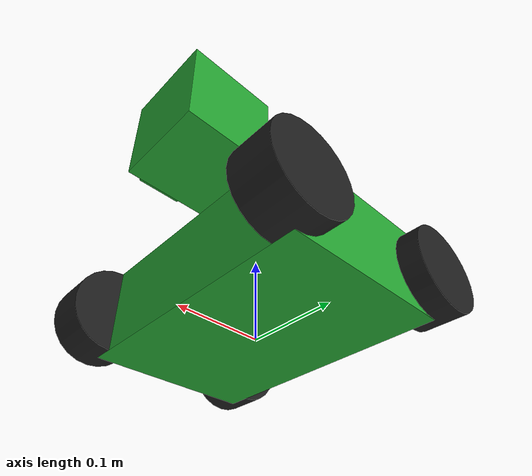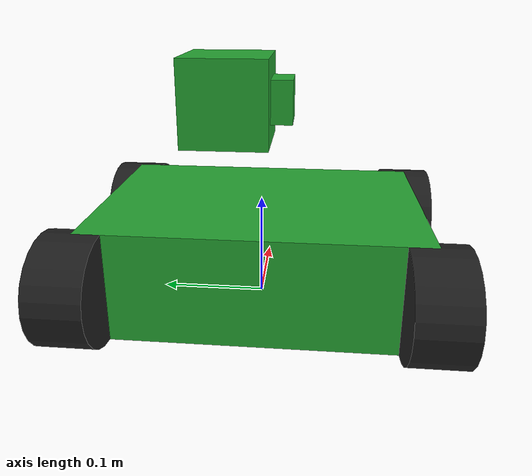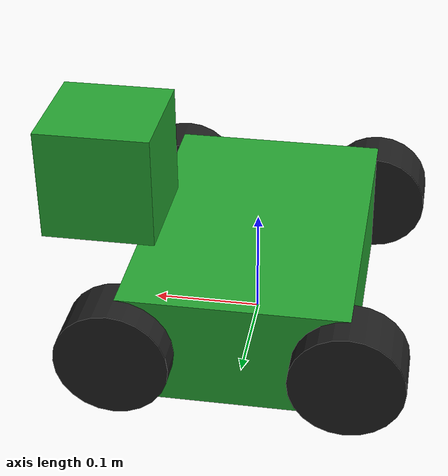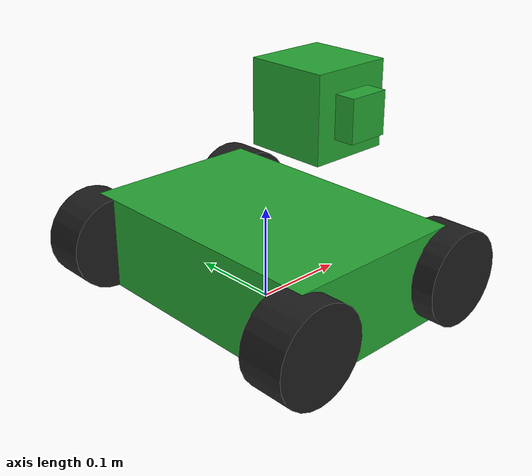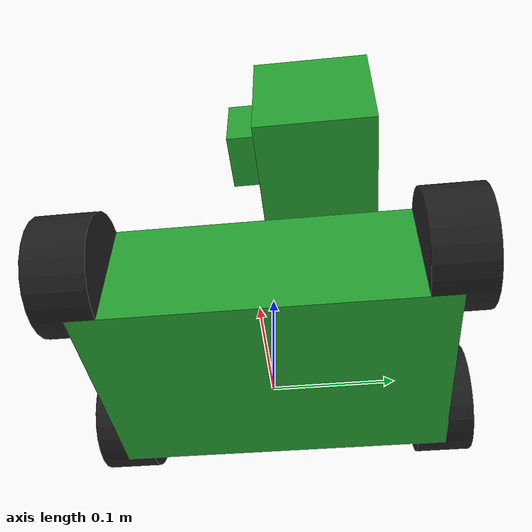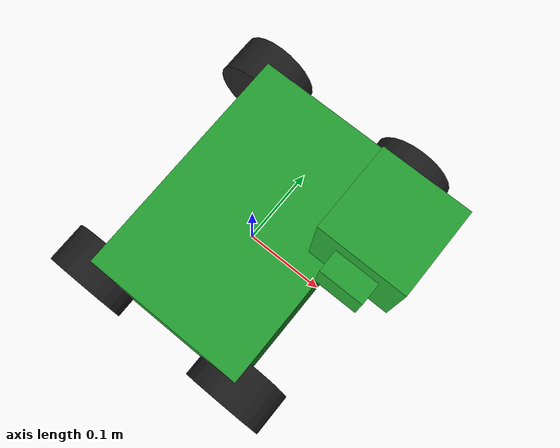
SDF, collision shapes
<?xml version='1.0'?>
<sdf version='1.7'>
  <model name='robot_2'>
    <link name='base_footprint'>
      <inertial>
        <pose>0 0 0 0 -0 0</pose>
        <mass>10.0001</mass>
        <inertia>
          <ixx>2</ixx>
          <ixy>-6.24999e-08</ixy>
          <ixz>-3.12499e-07</ixz>
          <iyy>2</iyy>
          <iyz>-6.24999e-08</iyz>
          <izz>2</izz>
        </inertia>
      </inertial>
      <self_collide>0</self_collide>
      <enable_wind>0</enable_wind>
      <kinematic>0</kinematic>
      <pose>0 0 0.05 0 -0 0</pose>
      <visual name='base_footprint_visual'>
        <pose>0 0 0 0 -0 0</pose>
        <geometry>
          <box>
            <size>0.001 0.001 0.001</size>
          </box>
        </geometry>
        <material>
          <script>
            <name>Gazebo/Green</name>
            <uri>file://media/materials/scripts/gazebo.material</uri>
          </script>
          <shader type='pixel' />
        </material>
        <transparency>0</transparency>
        <cast_shadows>1</cast_shadows>
      </visual>
      <visual name='base_footprint_fixed_joint_lump__base_link_visual_1'>
        <pose>0 0 0.05 0 -0 1.54</pose>
        <geometry>
          <box>
            <size>0.2 0.3 0.1</size>
          </box>
        </geometry>
        <material>
          <script>
            <name>Gazebo/Orange</name>
            <uri>file://media/materials/scripts/gazebo.material</uri>
          </script>
          <shader type='pixel' />
        </material>
        <transparency>0</transparency>
        <cast_shadows>1</cast_shadows>
      </visual>
      <visual name='base_footprint_fixed_joint_lump__camera_link_visual_2'>
        <pose>0.125 0 0.125 0 -0 0</pose>
        <geometry>
          <box>
            <size>0.05 0.05 0.05</size>
          </box>
        </geometry>
        <material>
          <script>
            <name>Gazebo/Red</name>
            <uri>file://media/materials/scripts/gazebo.material</uri>
          </script>
          <shader type='pixel' />
        </material>
        <transparency>0</transparency>
        <cast_shadows>1</cast_shadows>
      </visual>
      <visual name='base_footprint_fixed_joint_lump__hokuyo_link_visual_3'>
        <pose>0.125 0.05 0.125 0 -0 0</pose>
        <geometry>
          <mesh>
            <scale>1 1 1</scale>
            <uri>/run/media/kelvin34501/Workspace/G4_S1/netoptim/learn_rviz/robot1_description/meshes/hokuyo.dae</uri>
          </mesh>
        </geometry>
        <material>
          <shader type='pixel' />
        </material>
        <transparency>0</transparency>
        <cast_shadows>1</cast_shadows>
      </visual>
      <collision name='base_footprint_fixed_joint_lump__base_link_collision'>
        <laser_retro>0</laser_retro>
        <max_contacts>10</max_contacts>
        <pose>0 0 0 0 -0 0</pose>
        <geometry>
          <box>
            <size>0.2 0.3 0.1</size>
          </box>
        </geometry>
        <surface>
          <friction>
            <ode>
              <mu>1</mu>
              <mu2>1</mu2>
              <fdir1>0 0 0</fdir1>
              <slip1>0</slip1>
              <slip2>0</slip2>
            </ode>
            <torsional>
              <coefficient>1</coefficient>
              <patch_radius>0</patch_radius>
              <surface_radius>0</surface_radius>
              <use_patch_radius>1</use_patch_radius>
              <ode>
                <slip>0</slip>
              </ode>
            </torsional>
          </friction>
          <bounce>
            <restitution_coefficient>0</restitution_coefficient>
            <threshold>1e+06</threshold>
          </bounce>
          <contact>
            <collide_without_contact>0</collide_without_contact>
            <collide_without_contact_bitmask>1</collide_without_contact_bitmask>
            <collide_bitmask>1</collide_bitmask>
            <ode>
              <soft_cfm>0</soft_cfm>
              <soft_erp>0.2</soft_erp>
              <kp>1e+13</kp>
              <kd>1</kd>
              <max_vel>0.01</max_vel>
              <min_depth>0</min_depth>
            </ode>
            <bullet>
              <split_impulse>1</split_impulse>
              <split_impulse_penetration_threshold>-0.01</split_impulse_penetration_threshold>
              <soft_cfm>0</soft_cfm>
              <soft_erp>0.2</soft_erp>
              <kp>1e+13</kp>
              <kd>1</kd>
            </bullet>
          </contact>
        </surface>
      </collision>
      <collision name='base_footprint_fixed_joint_lump__camera_link_collision_1'>
        <laser_retro>0</laser_retro>
        <max_contacts>10</max_contacts>
        <pose>0.125 0 0.125 0 -0 0</pose>
        <geometry>
          <box>
            <size>0.05 0.05 0.05</size>
          </box>
        </geometry>
        <surface>
          <friction>
            <ode>
              <mu>0.2</mu>
              <mu2>0.2</mu2>
              <fdir1>0 0 0</fdir1>
              <slip1>0</slip1>
              <slip2>0</slip2>
            </ode>
            <torsional>
              <coefficient>1</coefficient>
              <patch_radius>0</patch_radius>
              <surface_radius>0</surface_radius>
              <use_patch_radius>1</use_patch_radius>
              <ode>
                <slip>0</slip>
              </ode>
            </torsional>
          </friction>
          <bounce>
            <restitution_coefficient>0</restitution_coefficient>
            <threshold>1e+06</threshold>
          </bounce>
          <contact>
            <collide_without_contact>0</collide_without_contact>
            <collide_without_contact_bitmask>1</collide_without_contact_bitmask>
            <collide_bitmask>1</collide_bitmask>
            <ode>
              <soft_cfm>0</soft_cfm>
              <soft_erp>0.2</soft_erp>
              <kp>1e+13</kp>
              <kd>1</kd>
              <max_vel>0.01</max_vel>
              <min_depth>0</min_depth>
            </ode>
            <bullet>
              <split_impulse>1</split_impulse>
              <split_impulse_penetration_threshold>-0.01</split_impulse_penetration_threshold>
              <soft_cfm>0</soft_cfm>
              <soft_erp>0.2</soft_erp>
              <kp>1e+13</kp>
              <kd>1</kd>
            </bullet>
          </contact>
        </surface>
      </collision>
      <collision name='base_footprint_fixed_joint_lump__hokuyo_link_collision_2'>
        <laser_retro>0</laser_retro>
        <max_contacts>10</max_contacts>
        <pose>0.125 0.05 0.125 0 -0 0</pose>
        <geometry>
          <box>
            <size>0.1 0.1 0.1</size>
          </box>
        </geometry>
        <surface>
          <friction>
            <ode>
              <mu>1</mu>
              <mu2>1</mu2>
              <fdir1>0 0 0</fdir1>
              <slip1>0</slip1>
              <slip2>0</slip2>
            </ode>
            <torsional>
              <coefficient>1</coefficient>
              <patch_radius>0</patch_radius>
              <surface_radius>0</surface_radius>
              <use_patch_radius>1</use_patch_radius>
              <ode>
                <slip>0</slip>
              </ode>
            </torsional>
          </friction>
          <bounce>
            <restitution_coefficient>0</restitution_coefficient>
            <threshold>1e+06</threshold>
          </bounce>
          <contact>
            <collide_without_contact>0</collide_without_contact>
            <collide_without_contact_bitmask>1</collide_without_contact_bitmask>
            <collide_bitmask>1</collide_bitmask>
            <ode>
              <soft_cfm>0</soft_cfm>
              <soft_erp>0.2</soft_erp>
              <kp>1e+13</kp>
              <kd>1</kd>
              <max_vel>0.01</max_vel>
              <min_depth>0</min_depth>
            </ode>
            <bullet>
              <split_impulse>1</split_impulse>
              <split_impulse_penetration_threshold>-0.01</split_impulse_penetration_threshold>
              <soft_cfm>0</soft_cfm>
              <soft_erp>0.2</soft_erp>
              <kp>1e+13</kp>
              <kd>1</kd>
            </bullet>
          </contact>
        </surface>
      </collision>
    </link>
    <link name='wheel_1'>
      <pose>0.1 0.15 0.05 -1.5707 0 0</pose>
      <inertial>
        <pose>0 0 0 0 -0 0</pose>
        <mass>1</mass>
        <inertia>
          <ixx>1</ixx>
          <ixy>0</ixy>
          <ixz>0</ixz>
          <iyy>1</iyy>
          <iyz>0</iyz>
          <izz>1</izz>
        </inertia>
      </inertial>
      <gravity>1</gravity>
      <velocity_decay />
      <self_collide>0</self_collide>
      <enable_wind>0</enable_wind>
      <kinematic>0</kinematic>
      <visual name='wheel_1_visual'>
        <pose>0 0 0 0 -0 0</pose>
        <geometry>
          <cylinder>
            <length>0.05</length>
            <radius>0.05</radius>
          </cylinder>
        </geometry>
        <material>
          <script>
            <name>Gazebo/Black</name>
            <uri>file://media/materials/scripts/gazebo.material</uri>
          </script>
          <shader type='pixel' />
        </material>
        <transparency>0</transparency>
        <cast_shadows>1</cast_shadows>
      </visual>
      <collision name='wheel_1_collision'>
        <laser_retro>0</laser_retro>
        <max_contacts>10</max_contacts>
        <pose>0 0 0 0 -0 0</pose>
        <geometry>
          <cylinder>
            <radius>0.05</radius>
            <length>0.05</length>
          </cylinder>
        </geometry>
        <surface>
          <friction>
            <ode>
              <mu>1</mu>
              <mu2>1</mu2>
              <fdir1>0 0 0</fdir1>
              <slip1>0</slip1>
              <slip2>0</slip2>
            </ode>
            <torsional>
              <coefficient>1</coefficient>
              <patch_radius>0</patch_radius>
              <surface_radius>0</surface_radius>
              <use_patch_radius>1</use_patch_radius>
              <ode>
                <slip>0</slip>
              </ode>
            </torsional>
          </friction>
          <bounce>
            <restitution_coefficient>0</restitution_coefficient>
            <threshold>1e+06</threshold>
          </bounce>
          <contact>
            <collide_without_contact>0</collide_without_contact>
            <collide_without_contact_bitmask>1</collide_without_contact_bitmask>
            <collide_bitmask>1</collide_bitmask>
            <ode>
              <soft_cfm>0</soft_cfm>
              <soft_erp>0.2</soft_erp>
              <kp>1e+13</kp>
              <kd>1</kd>
              <max_vel>0.01</max_vel>
              <min_depth>0</min_depth>
            </ode>
            <bullet>
              <split_impulse>1</split_impulse>
              <split_impulse_penetration_threshold>-0.01</split_impulse_penetration_threshold>
              <soft_cfm>0</soft_cfm>
              <soft_erp>0.2</soft_erp>
              <kp>1e+13</kp>
              <kd>1</kd>
            </bullet>
          </contact>
        </surface>
      </collision>
    </link>
    <link name='wheel_2'>
      <pose>-0.1 0.15 0.05 -1.5707 0 0</pose>
      <inertial>
        <pose>0 0 0 0 -0 0</pose>
        <mass>1</mass>
        <inertia>
          <ixx>1</ixx>
          <ixy>0</ixy>
          <ixz>0</ixz>
          <iyy>1</iyy>
          <iyz>0</iyz>
          <izz>1</izz>
        </inertia>
      </inertial>
      <gravity>1</gravity>
      <velocity_decay />
      <self_collide>0</self_collide>
      <enable_wind>0</enable_wind>
      <kinematic>0</kinematic>
      <visual name='wheel_2_visual'>
        <pose>0 0 0 0 -0 0</pose>
        <geometry>
          <cylinder>
            <length>0.05</length>
            <radius>0.05</radius>
          </cylinder>
        </geometry>
        <material>
          <script>
            <name>Gazebo/Black</name>
            <uri>file://media/materials/scripts/gazebo.material</uri>
          </script>
          <shader type='pixel' />
        </material>
        <transparency>0</transparency>
        <cast_shadows>1</cast_shadows>
      </visual>
      <collision name='wheel_2_collision'>
        <laser_retro>0</laser_retro>
        <max_contacts>10</max_contacts>
        <pose>0 0 0 0 -0 0</pose>
        <geometry>
          <cylinder>
            <radius>0.05</radius>
            <length>0.05</length>
          </cylinder>
        </geometry>
        <surface>
          <friction>
            <ode>
              <mu>1</mu>
              <mu2>1</mu2>
              <fdir1>0 0 0</fdir1>
              <slip1>0</slip1>
              <slip2>0</slip2>
            </ode>
            <torsional>
              <coefficient>1</coefficient>
              <patch_radius>0</patch_radius>
              <surface_radius>0</surface_radius>
              <use_patch_radius>1</use_patch_radius>
              <ode>
                <slip>0</slip>
              </ode>
            </torsional>
          </friction>
          <bounce>
            <restitution_coefficient>0</restitution_coefficient>
            <threshold>1e+06</threshold>
          </bounce>
          <contact>
            <collide_without_contact>0</collide_without_contact>
            <collide_without_contact_bitmask>1</collide_without_contact_bitmask>
            <collide_bitmask>1</collide_bitmask>
            <ode>
              <soft_cfm>0</soft_cfm>
              <soft_erp>0.2</soft_erp>
              <kp>1e+13</kp>
              <kd>1</kd>
              <max_vel>0.01</max_vel>
              <min_depth>0</min_depth>
            </ode>
            <bullet>
              <split_impulse>1</split_impulse>
              <split_impulse_penetration_threshold>-0.01</split_impulse_penetration_threshold>
              <soft_cfm>0</soft_cfm>
              <soft_erp>0.2</soft_erp>
              <kp>1e+13</kp>
              <kd>1</kd>
            </bullet>
          </contact>
        </surface>
      </collision>
    </link>
    <link name='wheel_3'>
      <pose>0.1 -0.15 0.05 -1.5707 0 0</pose>
      <inertial>
        <pose>0 0 0 0 -0 0</pose>
        <mass>1</mass>
        <inertia>
          <ixx>1</ixx>
          <ixy>0</ixy>
          <ixz>0</ixz>
          <iyy>1</iyy>
          <iyz>0</iyz>
          <izz>1</izz>
        </inertia>
      </inertial>
      <gravity>1</gravity>
      <velocity_decay />
      <self_collide>0</self_collide>
      <enable_wind>0</enable_wind>
      <kinematic>0</kinematic>
      <visual name='wheel_3_visual'>
        <pose>0 0 0 0 -0 0</pose>
        <geometry>
          <cylinder>
            <length>0.05</length>
            <radius>0.05</radius>
          </cylinder>
        </geometry>
        <material>
          <script>
            <name>Gazebo/Black</name>
            <uri>file://media/materials/scripts/gazebo.material</uri>
          </script>
          <shader type='pixel' />
        </material>
        <transparency>0</transparency>
        <cast_shadows>1</cast_shadows>
      </visual>
      <collision name='wheel_3_collision'>
        <laser_retro>0</laser_retro>
        <max_contacts>10</max_contacts>
        <pose>0 0 0 0 -0 0</pose>
        <geometry>
          <cylinder>
            <radius>0.05</radius>
            <length>0.05</length>
          </cylinder>
        </geometry>
        <surface>
          <friction>
            <ode>
              <mu>1</mu>
              <mu2>1</mu2>
              <fdir1>0 0 0</fdir1>
              <slip1>0</slip1>
              <slip2>0</slip2>
            </ode>
            <torsional>
              <coefficient>1</coefficient>
              <patch_radius>0</patch_radius>
              <surface_radius>0</surface_radius>
              <use_patch_radius>1</use_patch_radius>
              <ode>
                <slip>0</slip>
              </ode>
            </torsional>
          </friction>
          <bounce>
            <restitution_coefficient>0</restitution_coefficient>
            <threshold>1e+06</threshold>
          </bounce>
          <contact>
            <collide_without_contact>0</collide_without_contact>
            <collide_without_contact_bitmask>1</collide_without_contact_bitmask>
            <collide_bitmask>1</collide_bitmask>
            <ode>
              <soft_cfm>0</soft_cfm>
              <soft_erp>0.2</soft_erp>
              <kp>1e+13</kp>
              <kd>1</kd>
              <max_vel>0.01</max_vel>
              <min_depth>0</min_depth>
            </ode>
            <bullet>
              <split_impulse>1</split_impulse>
              <split_impulse_penetration_threshold>-0.01</split_impulse_penetration_threshold>
              <soft_cfm>0</soft_cfm>
              <soft_erp>0.2</soft_erp>
              <kp>1e+13</kp>
              <kd>1</kd>
            </bullet>
          </contact>
        </surface>
      </collision>
    </link>
    <link name='wheel_4'>
      <pose>-0.1 -0.15 0.05 -1.5707 0 0</pose>
      <inertial>
        <pose>0 0 0 0 -0 0</pose>
        <mass>1</mass>
        <inertia>
          <ixx>1</ixx>
          <ixy>0</ixy>
          <ixz>0</ixz>
          <iyy>1</iyy>
          <iyz>0</iyz>
          <izz>1</izz>
        </inertia>
      </inertial>
      <gravity>1</gravity>
      <velocity_decay />
      <self_collide>0</self_collide>
      <enable_wind>0</enable_wind>
      <kinematic>0</kinematic>
      <visual name='wheel_4_visual'>
        <pose>0 0 0 0 -0 0</pose>
        <geometry>
          <cylinder>
            <length>0.05</length>
            <radius>0.05</radius>
          </cylinder>
        </geometry>
        <material>
          <script>
            <name>Gazebo/Black</name>
            <uri>file://media/materials/scripts/gazebo.material</uri>
          </script>
          <shader type='pixel' />
        </material>
        <transparency>0</transparency>
        <cast_shadows>1</cast_shadows>
      </visual>
      <collision name='wheel_4_collision'>
        <laser_retro>0</laser_retro>
        <max_contacts>10</max_contacts>
        <pose>0 0 0 0 -0 0</pose>
        <geometry>
          <cylinder>
            <radius>0.05</radius>
            <length>0.05</length>
          </cylinder>
        </geometry>
        <surface>
          <friction>
            <ode>
              <mu>1</mu>
              <mu2>1</mu2>
              <fdir1>0 0 0</fdir1>
              <slip1>0</slip1>
              <slip2>0</slip2>
            </ode>
            <torsional>
              <coefficient>1</coefficient>
              <patch_radius>0</patch_radius>
              <surface_radius>0</surface_radius>
              <use_patch_radius>1</use_patch_radius>
              <ode>
                <slip>0</slip>
              </ode>
            </torsional>
          </friction>
          <bounce>
            <restitution_coefficient>0</restitution_coefficient>
            <threshold>1e+06</threshold>
          </bounce>
          <contact>
            <collide_without_contact>0</collide_without_contact>
            <collide_without_contact_bitmask>1</collide_without_contact_bitmask>
            <collide_bitmask>1</collide_bitmask>
            <ode>
              <soft_cfm>0</soft_cfm>
              <soft_erp>0.2</soft_erp>
              <kp>1e+13</kp>
              <kd>1</kd>
              <max_vel>0.01</max_vel>
              <min_depth>0</min_depth>
            </ode>
            <bullet>
              <split_impulse>1</split_impulse>
              <split_impulse_penetration_threshold>-0.01</split_impulse_penetration_threshold>
              <soft_cfm>0</soft_cfm>
              <soft_erp>0.2</soft_erp>
              <kp>1e+13</kp>
              <kd>1</kd>
            </bullet>
          </contact>
        </surface>
      </collision>
    </link>
    <joint name='base_to_wheel1' type='revolute'>
      <parent>base_footprint</parent>
      <child>wheel_1</child>
      <pose>0 -0 0 0 -0 0</pose>
      <axis>
        <xyz>0 0 1</xyz>
        <limit>
          <lower>-1e+16</lower>
          <upper>1e+16</upper>
          <effort>-1</effort>
          <velocity>-1</velocity>
        </limit>
        <dynamics>
          <spring_reference>0</spring_reference>
          <spring_stiffness>0</spring_stiffness>
          <damping>0</damping>
          <friction>0</friction>
        </dynamics>
      </axis>
      <physics>
        <ode>
          <limit>
            <cfm>0</cfm>
            <erp>0.2</erp>
          </limit>
          <suspension>
            <cfm>0</cfm>
            <erp>0.2</erp>
          </suspension>
        </ode>
      </physics>
    </joint>
    <joint name='base_to_wheel2' type='revolute'>
      <parent>base_footprint</parent>
      <child>wheel_2</child>
      <pose>0 -0 0 0 -0 0</pose>
      <axis>
        <xyz>0 0 1</xyz>
        <limit>
          <lower>-1e+16</lower>
          <upper>1e+16</upper>
          <effort>-1</effort>
          <velocity>-1</velocity>
        </limit>
        <dynamics>
          <spring_reference>0</spring_reference>
          <spring_stiffness>0</spring_stiffness>
          <damping>0</damping>
          <friction>0</friction>
        </dynamics>
      </axis>
      <physics>
        <ode>
          <limit>
            <cfm>0</cfm>
            <erp>0.2</erp>
          </limit>
          <suspension>
            <cfm>0</cfm>
            <erp>0.2</erp>
          </suspension>
        </ode>
      </physics>
    </joint>
    <joint name='base_to_wheel3' type='revolute'>
      <parent>base_footprint</parent>
      <child>wheel_3</child>
      <pose>0 0 0 0 -0 0</pose>
      <axis>
        <xyz>0 0 1</xyz>
        <limit>
          <lower>-1e+16</lower>
          <upper>1e+16</upper>
          <effort>-1</effort>
          <velocity>-1</velocity>
        </limit>
        <dynamics>
          <spring_reference>0</spring_reference>
          <spring_stiffness>0</spring_stiffness>
          <damping>0</damping>
          <friction>0</friction>
        </dynamics>
      </axis>
      <physics>
        <ode>
          <limit>
            <cfm>0</cfm>
            <erp>0.2</erp>
          </limit>
          <suspension>
            <cfm>0</cfm>
            <erp>0.2</erp>
          </suspension>
        </ode>
      </physics>
    </joint>
    <joint name='base_to_wheel4' type='revolute'>
      <parent>base_footprint</parent>
      <child>wheel_4</child>
      <pose>0 0 0 0 -0 0</pose>
      <axis>
        <xyz>0 0 1</xyz>
        <limit>
          <lower>-1e+16</lower>
          <upper>1e+16</upper>
          <effort>-1</effort>
          <velocity>-1</velocity>
        </limit>
        <dynamics>
          <spring_reference>0</spring_reference>
          <spring_stiffness>0</spring_stiffness>
          <damping>0</damping>
          <friction>0</friction>
        </dynamics>
      </axis>
      <physics>
        <ode>
          <limit>
            <cfm>0</cfm>
            <erp>0.2</erp>
          </limit>
          <suspension>
            <cfm>0</cfm>
            <erp>0.2</erp>
          </suspension>
        </ode>
      </physics>
    </joint>
    <static>0</static>
    <allow_auto_disable>1</allow_auto_disable>
  </model>
</sdf>
